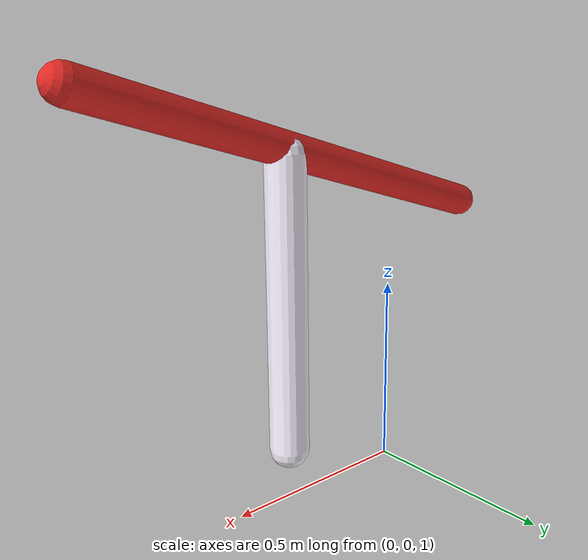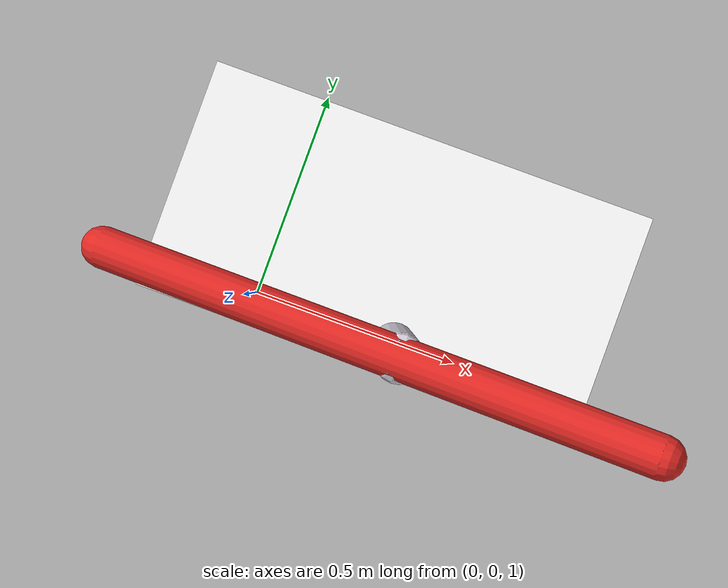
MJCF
<mujoco model="morphology">
    <option timestep="0.01" />
    <default>
        <default class="/" />
        <default class="0/" />
        <default class="0/1/" />
        <default class="0/1/2/" />
        <default class="0/1/2/3/" />
        <default class="0/1/2/4/" />
        <default class="0/1/2/4/5/" />
        <default class="0/1/2/4/5/6/" />
        <default class="0/1/2/4/5/6/7/" />
        <default class="0/1/2/4/5/6/8/" />
        <default class="0/9/" />
        <default class="0/9/10/" />
    </default>
    <asset>
        <texture name="texplane" type="2d" builtin="checker"
            rgb1="0.10000000000000001 0.20000000000000001 0.29999999999999999"
            rgb2="0.20000000000000001 0.29999999999999999 0.40000000000000002" width="300"
            height="300" />
        <material name="MatPlane" class="/" texture="texplane" texrepeat="20 20" specular="1"
            shininess="1" reflectance="0.5" />
    </asset>
    <worldbody>
        <light name="//unnamed_light_0" class="/" directional="true" pos="0 0 1.5" dir="0 0 -1.3"
            cutoff="100" exponent="1" diffuse="1 1 1"
            specular="0.10000000000000001 0.10000000000000001 0.10000000000000001" />
        <geom name="ground" class="/" type="plane" size="15 15 0.5" material="MatPlane"
            rgba="1 1 1 1" />
        <site name="body" class="/"
            size="9.9999999999999995e-07 9.9999999999999995e-07 9.9999999999999995e-07"
            pos="0 0 1.7828612089157105" />
        <body pos="0 0 1.7828612089157105" name="0/">
            <joint name="0/rootx/" class="/" type="slide" axis="1 0 0" limited="false" stiffness="0"
                armature="0" damping="0" />
            <joint name="0/rootz/" class="/" type="slide" axis="0 0 1" limited="false" stiffness="0"
                armature="0" damping="0" />
            <joint name="0/rooty/" class="/" type="hinge" axis="0 1 0" limited="false" stiffness="0"
                armature="0" damping="0" />
            <geom name="0/geom" class="0/" type="capsule" contype="1" conaffinity="1" condim="3"
                size="0.043172814288833079 0.59407"
                rgba="0.88646084083706944 0.16256069909897441 0.14196218599377186 1"
                friction="0.59999999999999998 0.10000000000000001 0.10000000000000001"
                pos="0.28525 0 0.08285" zaxis="0.5720556447	0	0.1656735534"
            />
            <site name="0/end0" class="0/" size="0.0050000000000000001"
                pos="0.57205564467500958 0 0.16567355341617773" />
            <site name="0/attach1" class="0/"
                size="9.9999999999999995e-07 9.9999999999999995e-07 9.9999999999999995e-07"
                pos="0.30326548163533512 0 0.087828990831019832" />
            <body pos="0.30326548163533512 0 0.087828990831019832" name="0/1/">
                <geom name="0/1/geom" class="0/1/" type="capsule" contype="1" conaffinity="1"
                    condim="3" size="0.050269690790261834 0.3699350916"
                    rgba="0.95044212911003889 0.92296779845611876 0.97421156684332455 1"
                    friction="0.59999999999999998 0.10000000000000001 0.10000000000000001"
                    pos="0.04409351612	0	-0.3672978816" />
                <site name="0/1/end1" class="0/1/" size="0.0050000000000000001"
                    pos="0.088187032237623364 0 -0.73459576325010745" />
                <site name="0/1/attach2" class="0/1/"
                    size="9.9999999999999995e-07 9.9999999999999995e-07 9.9999999999999995e-07"
                    pos="0.048945544712775228 0 -0.4077151579281037" />
            </body>
            <camera name="0/side" class="0/" mode="trackcom"
                pos="0.40000000000000002 -4 0.20000000000000001"
                quat="0.70699999999999996 0.70699999999999996 0 0" />
        </body>
    </worldbody>
    <actuator>
    </actuator>
    <sensor>
        <subtreelinvel name="velocity" body="0/" />
    </sensor>
</mujoco>
